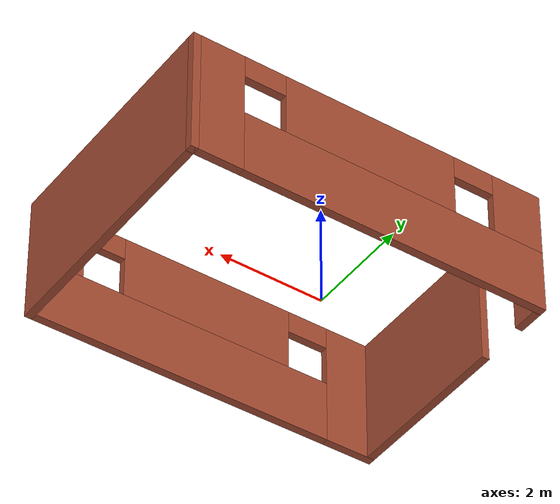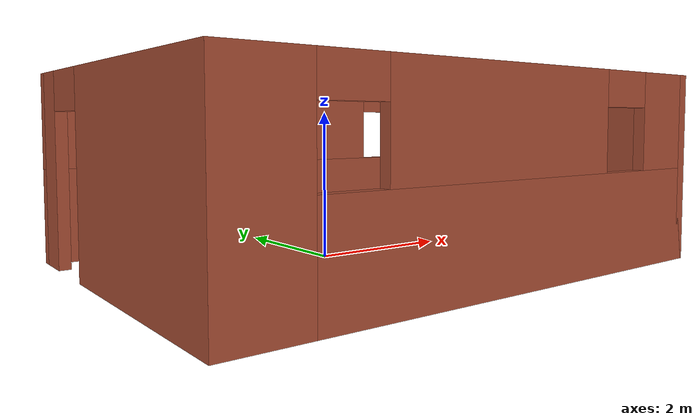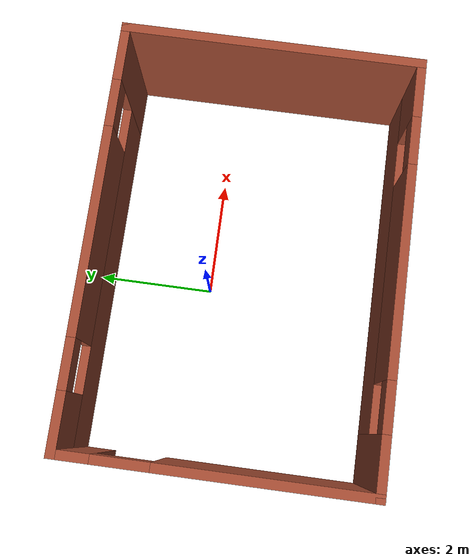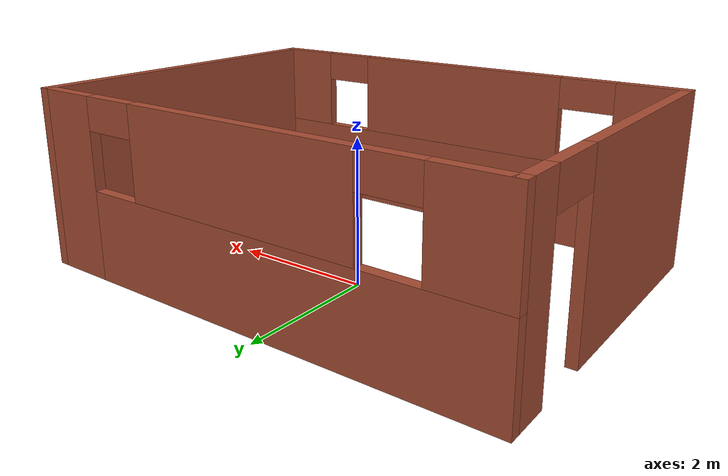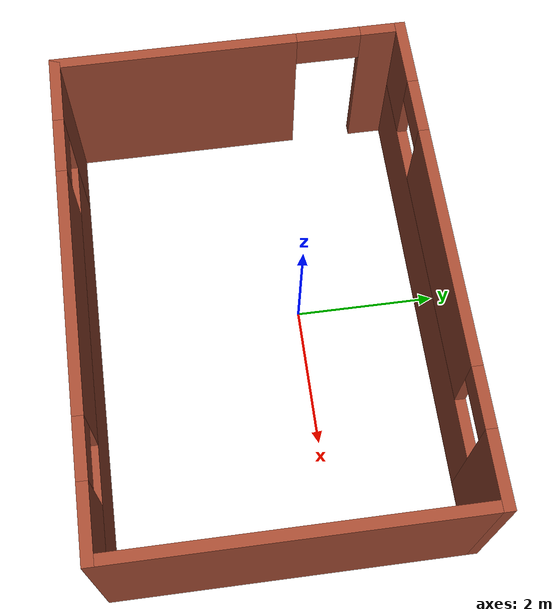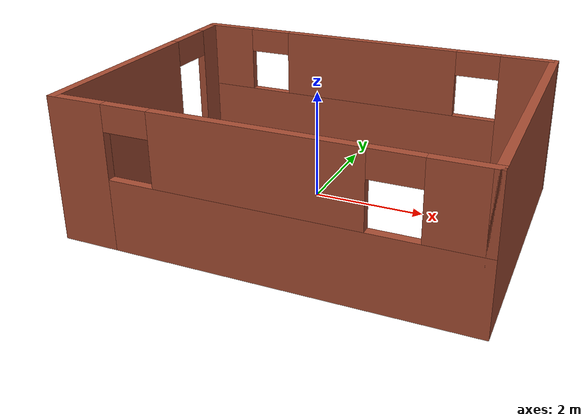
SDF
<?xml version='1.0'?>
<sdf version='1.6'>
  <model name='Paredes'>
    <pose frame=''>0.315 -0.605 0 0 -0 0</pose>
    <link name='Wall_0'>
      <pose frame=''>-0 -2.425 0 0 -0 0</pose>
      <visual name='Wall_0_Visual_0'>
        <pose frame=''>-3 0 1.25 0 -0 0</pose>
        <geometry>
          <box>
            <size>1 0.15 2.5</size>
          </box>
        </geometry>
        <material>
          <script>
            <uri>file://media/materials/scripts/gazebo.material</uri>
            <name>Gazebo/Bricks</name>
          </script>
          <ambient>1 1 1 1</ambient>
        </material>
        <meta>
          <layer>0</layer>
        </meta>
      </visual>
      <collision name='Wall_0_Collision_0'>
        <geometry>
          <box>
            <size>1 0.15 2.5</size>
          </box>
        </geometry>
        <pose frame=''>-3 0 1.25 0 -0 0</pose>
      </collision>
      <visual name='Wall_0_Visual_1'>
        <pose frame=''>0.5 0 0.625 0 -0 0</pose>
        <geometry>
          <box>
            <size>6 0.15 1.25</size>
          </box>
        </geometry>
        <material>
          <script>
            <uri>file://media/materials/scripts/gazebo.material</uri>
            <name>Gazebo/Bricks</name>
          </script>
          <ambient>1 1 1 1</ambient>
        </material>
        <meta>
          <layer>0</layer>
        </meta>
      </visual>
      <collision name='Wall_0_Collision_1'>
        <geometry>
          <box>
            <size>6 0.15 1.25</size>
          </box>
        </geometry>
        <pose frame=''>0.5 0 0.625 0 -0 0</pose>
      </collision>
      <visual name='Wall_0_Visual_2'>
        <pose frame=''>-0 0 1.875 0 -0 0</pose>
        <geometry>
          <box>
            <size>3.4 0.15 1.25</size>
          </box>
        </geometry>
        <material>
          <script>
            <uri>file://media/materials/scripts/gazebo.material</uri>
            <name>Gazebo/Bricks</name>
          </script>
          <ambient>1 1 1 1</ambient>
        </material>
        <meta>
          <layer>0</layer>
        </meta>
      </visual>
      <collision name='Wall_0_Collision_2'>
        <geometry>
          <box>
            <size>3.4 0.15 1.25</size>
          </box>
        </geometry>
        <pose frame=''>-0 0 1.875 0 -0 0</pose>
      </collision>
      <visual name='Wall_0_Visual_3'>
        <pose frame=''>3 0 1.875 0 -0 0</pose>
        <geometry>
          <box>
            <size>1 0.15 1.25</size>
          </box>
        </geometry>
        <material>
          <script>
            <uri>file://media/materials/scripts/gazebo.material</uri>
            <name>Gazebo/Bricks</name>
          </script>
          <ambient>1 1 1 1</ambient>
        </material>
        <meta>
          <layer>0</layer>
        </meta>
      </visual>
      <collision name='Wall_0_Collision_3'>
        <geometry>
          <box>
            <size>1 0.15 1.25</size>
          </box>
        </geometry>
        <pose frame=''>3 0 1.875 0 -0 0</pose>
      </collision>
      <visual name='Wall_0_Visual_4'>
        <pose frame=''>-2.1 0 2.275 0 -0 0</pose>
        <geometry>
          <box>
            <size>0.8 0.15 0.45</size>
          </box>
        </geometry>
        <material>
          <script>
            <uri>file://media/materials/scripts/gazebo.material</uri>
            <name>Gazebo/Bricks</name>
          </script>
          <ambient>1 1 1 1</ambient>
        </material>
        <meta>
          <layer>0</layer>
        </meta>
      </visual>
      <collision name='Wall_0_Collision_4'>
        <geometry>
          <box>
            <size>0.8 0.15 0.45</size>
          </box>
        </geometry>
        <pose frame=''>-2.1 0 2.275 0 -0 0</pose>
      </collision>
      <visual name='Wall_0_Visual_5'>
        <pose frame=''>2.1 0 2.275 0 -0 0</pose>
        <geometry>
          <box>
            <size>0.8 0.15 0.45</size>
          </box>
        </geometry>
        <material>
          <script>
            <uri>file://media/materials/scripts/gazebo.material</uri>
            <name>Gazebo/Bricks</name>
          </script>
          <ambient>1 1 1 1</ambient>
        </material>
        <meta>
          <layer>0</layer>
        </meta>
      </visual>
      <collision name='Wall_0_Collision_5'>
        <geometry>
          <box>
            <size>0.8 0.15 0.45</size>
          </box>
        </geometry>
        <pose frame=''>2.1 0 2.275 0 -0 0</pose>
      </collision>
    </link>
    <link name='Wall_1'>
      <collision name='Wall_1_Collision'>
        <geometry>
          <box>
            <size>5 0.15 2.5</size>
          </box>
        </geometry>
        <pose frame=''>0 0 1.25 0 -0 0</pose>
      </collision>
      <visual name='Wall_1_Visual'>
        <pose frame=''>0 0 1.25 0 -0 0</pose>
        <geometry>
          <box>
            <size>5 0.15 2.5</size>
          </box>
        </geometry>
        <material>
          <script>
            <uri>file://media/materials/scripts/gazebo.material</uri>
            <name>Gazebo/Bricks</name>
          </script>
          <ambient>1 1 1 1</ambient>
        </material>
        <meta>
          <layer>0</layer>
        </meta>
      </visual>
      <pose frame=''>3.425 0 0 0 -0 1.5708</pose>
    </link>
    <link name='Wall_2'>
      <pose frame=''>-0 2.425 0 0 -0 3.14159</pose>
      <visual name='Wall_2_Visual_0'>
        <pose frame=''>-3 0 1.25 0 -0 0</pose>
        <geometry>
          <box>
            <size>1 0.15 2.5</size>
          </box>
        </geometry>
        <material>
          <script>
            <uri>file://media/materials/scripts/gazebo.material</uri>
            <name>Gazebo/Bricks</name>
          </script>
          <ambient>1 1 1 1</ambient>
        </material>
        <meta>
          <layer>0</layer>
        </meta>
      </visual>
      <collision name='Wall_2_Collision_0'>
        <geometry>
          <box>
            <size>1 0.15 2.5</size>
          </box>
        </geometry>
        <pose frame=''>-3 0 1.25 0 -0 0</pose>
      </collision>
      <visual name='Wall_2_Visual_1'>
        <pose frame=''>0.5 0 0.625 0 -0 0</pose>
        <geometry>
          <box>
            <size>6 0.15 1.25</size>
          </box>
        </geometry>
        <material>
          <script>
            <uri>file://media/materials/scripts/gazebo.material</uri>
            <name>Gazebo/Bricks</name>
          </script>
          <ambient>1 1 1 1</ambient>
        </material>
        <meta>
          <layer>0</layer>
        </meta>
      </visual>
      <collision name='Wall_2_Collision_1'>
        <geometry>
          <box>
            <size>6 0.15 1.25</size>
          </box>
        </geometry>
        <pose frame=''>0.5 0 0.625 0 -0 0</pose>
      </collision>
      <visual name='Wall_2_Visual_2'>
        <pose frame=''>-0 0 1.875 0 -0 0</pose>
        <geometry>
          <box>
            <size>3.4 0.15 1.25</size>
          </box>
        </geometry>
        <material>
          <script>
            <uri>file://media/materials/scripts/gazebo.material</uri>
            <name>Gazebo/Bricks</name>
          </script>
          <ambient>1 1 1 1</ambient>
        </material>
        <meta>
          <layer>0</layer>
        </meta>
      </visual>
      <collision name='Wall_2_Collision_2'>
        <geometry>
          <box>
            <size>3.4 0.15 1.25</size>
          </box>
        </geometry>
        <pose frame=''>-0 0 1.875 0 -0 0</pose>
      </collision>
      <visual name='Wall_2_Visual_3'>
        <pose frame=''>3 0 1.875 0 -0 0</pose>
        <geometry>
          <box>
            <size>1 0.15 1.25</size>
          </box>
        </geometry>
        <material>
          <script>
            <uri>file://media/materials/scripts/gazebo.material</uri>
            <name>Gazebo/Bricks</name>
          </script>
          <ambient>1 1 1 1</ambient>
        </material>
        <meta>
          <layer>0</layer>
        </meta>
      </visual>
      <collision name='Wall_2_Collision_3'>
        <geometry>
          <box>
            <size>1 0.15 1.25</size>
          </box>
        </geometry>
        <pose frame=''>3 0 1.875 0 -0 0</pose>
      </collision>
      <visual name='Wall_2_Visual_4'>
        <pose frame=''>-2.1 0 2.275 0 -0 0</pose>
        <geometry>
          <box>
            <size>0.8 0.15 0.45</size>
          </box>
        </geometry>
        <material>
          <script>
            <uri>file://media/materials/scripts/gazebo.material</uri>
            <name>Gazebo/Bricks</name>
          </script>
          <ambient>1 1 1 1</ambient>
        </material>
        <meta>
          <layer>0</layer>
        </meta>
      </visual>
      <collision name='Wall_2_Collision_4'>
        <geometry>
          <box>
            <size>0.8 0.15 0.45</size>
          </box>
        </geometry>
        <pose frame=''>-2.1 0 2.275 0 -0 0</pose>
      </collision>
      <visual name='Wall_2_Visual_5'>
        <pose frame=''>2.1 0 2.275 0 -0 0</pose>
        <geometry>
          <box>
            <size>0.8 0.15 0.45</size>
          </box>
        </geometry>
        <material>
          <script>
            <uri>file://media/materials/scripts/gazebo.material</uri>
            <name>Gazebo/Bricks</name>
          </script>
          <ambient>1 1 1 1</ambient>
        </material>
        <meta>
          <layer>0</layer>
        </meta>
      </visual>
      <collision name='Wall_2_Collision_5'>
        <geometry>
          <box>
            <size>0.8 0.15 0.45</size>
          </box>
        </geometry>
        <pose frame=''>2.1 0 2.275 0 -0 0</pose>
      </collision>
    </link>
    <link name='Wall_3'>
      <pose frame=''>-3.425 0 0 0 -0 -1.5708</pose>
      <visual name='Wall_3_Visual_0'>
        <pose frame=''>-2.176 0 1.25 0 -0 0</pose>
        <geometry>
          <box>
            <size>0.648006 0.15 2.5</size>
          </box>
        </geometry>
        <material>
          <script>
            <uri>file://media/materials/scripts/gazebo.material</uri>
            <name>Gazebo/Bricks</name>
          </script>
          <ambient>1 1 1 1</ambient>
        </material>
        <meta>
          <layer>0</layer>
        </meta>
      </visual>
      <collision name='Wall_3_Collision_0'>
        <geometry>
          <box>
            <size>0.648006 0.15 2.5</size>
          </box>
        </geometry>
        <pose frame=''>-2.176 0 1.25 0 -0 0</pose>
      </collision>
      <visual name='Wall_3_Visual_1'>
        <pose frame=''>0.774003 0 1.25 0 -0 0</pose>
        <geometry>
          <box>
            <size>3.45199 0.15 2.5</size>
          </box>
        </geometry>
        <material>
          <script>
            <uri>file://media/materials/scripts/gazebo.material</uri>
            <name>Gazebo/Bricks</name>
          </script>
          <ambient>1 1 1 1</ambient>
        </material>
        <meta>
          <layer>0</layer>
        </meta>
      </visual>
      <collision name='Wall_3_Collision_1'>
        <geometry>
          <box>
            <size>3.45199 0.15 2.5</size>
          </box>
        </geometry>
        <pose frame=''>0.774003 0 1.25 0 -0 0</pose>
      </collision>
      <visual name='Wall_3_Visual_2'>
        <pose frame=''>-1.40199 0 2.25 0 -0 0</pose>
        <geometry>
          <box>
            <size>0.9 0.15 0.5</size>
          </box>
        </geometry>
        <material>
          <script>
            <uri>file://media/materials/scripts/gazebo.material</uri>
            <name>Gazebo/Bricks</name>
          </script>
          <ambient>1 1 1 1</ambient>
        </material>
        <meta>
          <layer>0</layer>
        </meta>
      </visual>
      <collision name='Wall_3_Collision_2'>
        <geometry>
          <box>
            <size>0.9 0.15 0.5</size>
          </box>
        </geometry>
        <pose frame=''>-1.40199 0 2.25 0 -0 0</pose>
      </collision>
    </link>
    <static>1</static>
  </model>
</sdf>
